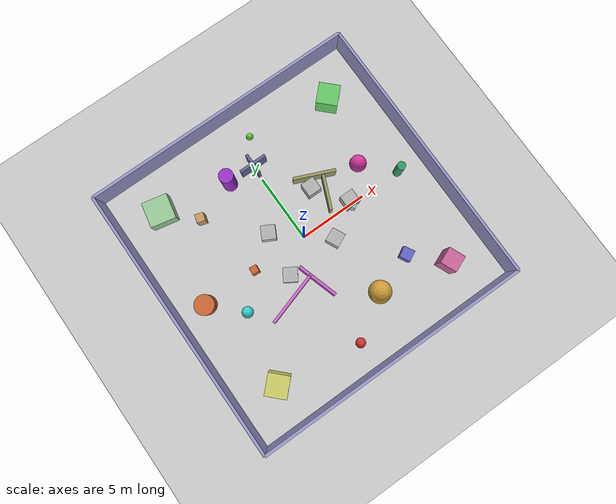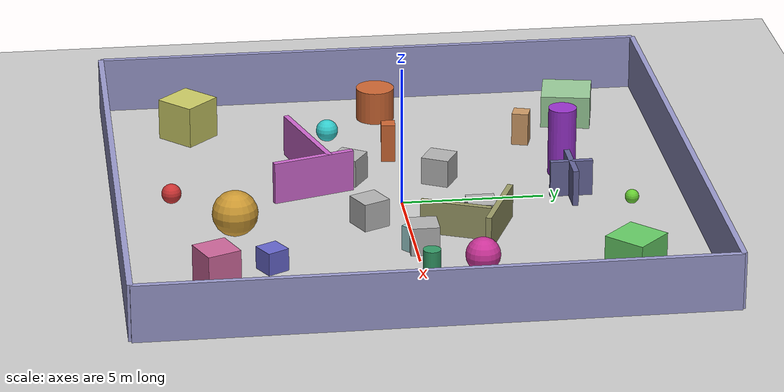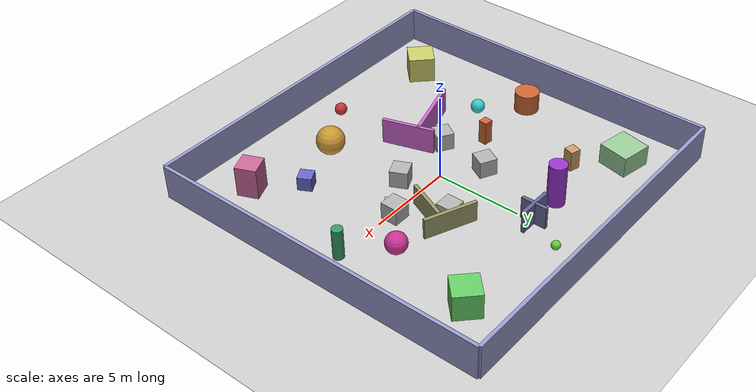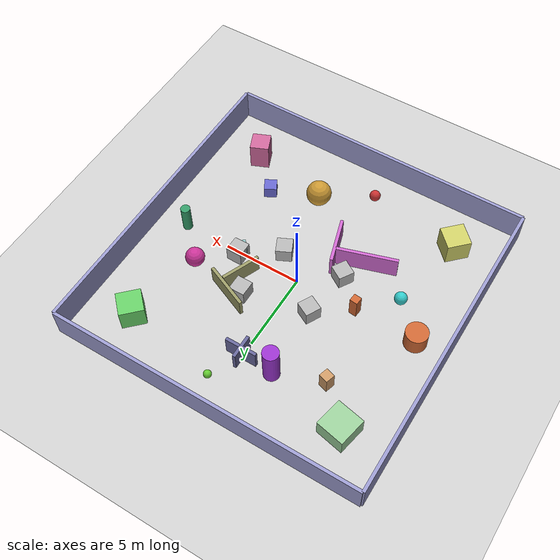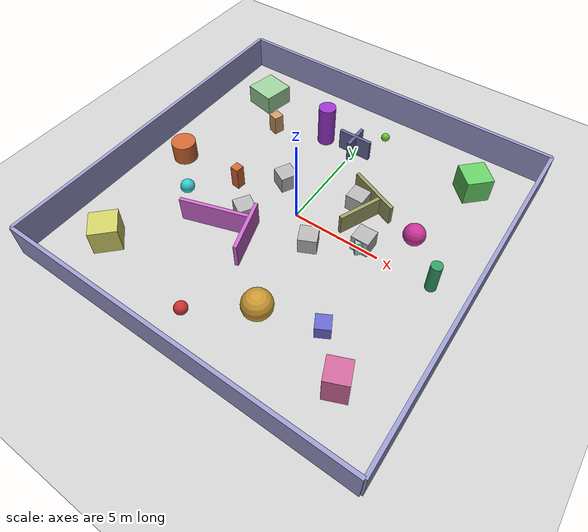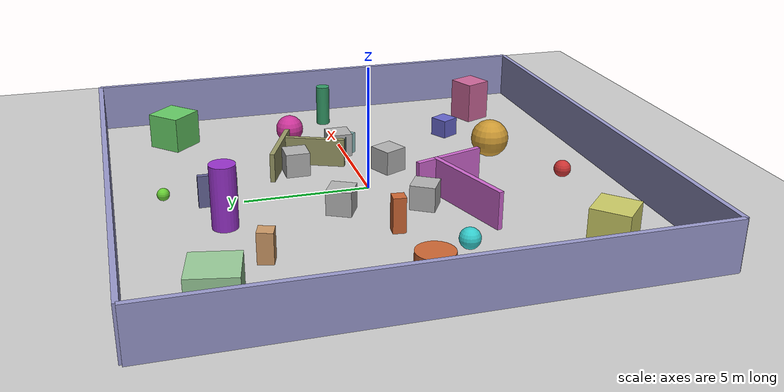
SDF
<sdf version='1.10'>
  <world name='empty'>
    <physics name='1ms' type='ignored'>
      <max_step_size>0.001</max_step_size>
      <real_time_factor>1</real_time_factor>
      <real_time_update_rate>1000</real_time_update_rate>
    </physics>
    <plugin name='gz::sim::systems::Physics' filename='gz-sim-physics-system'/>
    <plugin name='gz::sim::systems::UserCommands' filename='gz-sim-user-commands-system'/>
    <plugin name='gz::sim::systems::SceneBroadcaster' filename='gz-sim-scene-broadcaster-system'/>
    <plugin name='gz::sim::systems::Contact' filename='gz-sim-contact-system'/>
    <plugin name='gz::sim::systems::Imu' filename='gz-sim-imu-system'/>
    <plugin name='gz::sim::systems::Sensors' filename='gz-sim-sensors-system'>
      <render_engine>ogre2</render_engine>
    </plugin>
    <gravity>0 0 -9.8000000000000007</gravity>
    <magnetic_field>5.5644999999999998e-06 2.2875799999999999e-05 -4.2388400000000002e-05</magnetic_field>
    <atmosphere type='adiabatic'/>
    <scene>
      <ambient>0.400000006 0.400000006 0.400000006 1</ambient>
      <background>0.699999988 0.699999988 0.699999988 1</background>
      <shadows>true</shadows>
    </scene>
    <model name='ground_plane'>
      <static>true</static>
      <link name='link'>
        <collision name='collision'>
          <geometry>
            <plane>
              <normal>0 0 1</normal>
              <size>100 100</size>
            </plane>
          </geometry>
          <surface>
            <friction>
              <ode/>
            </friction>
            <bounce/>
            <contact/>
          </surface>
        </collision>
        <visual name='visual'>
          <geometry>
            <plane>
              <normal>0 0 1</normal>
              <size>100 100</size>
            </plane>
          </geometry>
          <material>
            <ambient>0.800000012 0.800000012 0.800000012 1</ambient>
            <diffuse>0.800000012 0.800000012 0.800000012 1</diffuse>
            <specular>0.800000012 0.800000012 0.800000012 1</specular>
          </material>
        </visual>
        <pose>0 0 0 0 0 0</pose>
        <inertial>
          <pose>0 0 0 0 0 0</pose>
          <mass>1</mass>
          <inertia>
            <ixx>1</ixx>
            <ixy>0</ixy>
            <ixz>0</ixz>
            <iyy>1</iyy>
            <iyz>0</iyz>
            <izz>1</izz>
          </inertia>
        </inertial>
        <enable_wind>false</enable_wind>
      </link>
      <pose>0 0 0 0 0 0</pose>
      <self_collide>false</self_collide>
    </model>

    <!-- Perimeter Walls -->
    <!-- North Wall -->
    <model name='north_wall'>
      <static>true</static>
      <link name='link'>
        <collision name='collision'>
          <geometry>
            <box>
              <size>20 0.2 2</size>
            </box>
          </geometry>
          <surface>
            <friction>
              <ode/>
            </friction>
            <bounce/>
            <contact/>
          </surface>
        </collision>
        <visual name='visual'>
          <geometry>
            <box>
              <size>20 0.2 2</size>
            </box>
          </geometry>
          <material>
            <ambient>0.6 0.6 0.8 1</ambient>
            <diffuse>0.6 0.6 0.8 1</diffuse>
            <specular>0.2 0.2 0.2 1</specular>
          </material>
        </visual>
        <pose>0 0 0 0 0 0</pose>
        <inertial>
          <mass>100</mass>
          <inertia>
            <ixx>33.33</ixx>
            <ixy>0</ixy>
            <ixz>0</ixz>
            <iyy>666.67</iyy>
            <iyz>0</iyz>
            <izz>666.67</izz>
          </inertia>
          <pose>0 0 0 0 0 0</pose>
        </inertial>
        <enable_wind>false</enable_wind>
      </link>
      <pose>0 10 1 0 0 0</pose>
      <self_collide>false</self_collide>
    </model>

    <!-- South Wall -->
    <model name='south_wall'>
      <static>true</static>
      <link name='link'>
        <collision name='collision'>
          <geometry>
            <box>
              <size>20 0.2 2</size>
            </box>
          </geometry>
          <surface>
            <friction>
              <ode/>
            </friction>
            <bounce/>
            <contact/>
          </surface>
        </collision>
        <visual name='visual'>
          <geometry>
            <box>
              <size>20 0.2 2</size>
            </box>
          </geometry>
          <material>
            <ambient>0.6 0.6 0.8 1</ambient>
            <diffuse>0.6 0.6 0.8 1</diffuse>
            <specular>0.2 0.2 0.2 1</specular>
          </material>
        </visual>
        <pose>0 0 0 0 0 0</pose>
        <inertial>
          <mass>100</mass>
          <inertia>
            <ixx>33.33</ixx>
            <ixy>0</ixy>
            <ixz>0</ixz>
            <iyy>666.67</iyy>
            <iyz>0</iyz>
            <izz>666.67</izz>
          </inertia>
          <pose>0 0 0 0 0 0</pose>
        </inertial>
        <enable_wind>false</enable_wind>
      </link>
      <pose>0 -10 1 0 0 0</pose>
      <self_collide>false</self_collide>
    </model>

    <!-- East Wall -->
    <model name='east_wall'>
      <static>true</static>
      <link name='link'>
        <collision name='collision'>
          <geometry>
            <box>
              <size>0.2 20 2</size>
            </box>
          </geometry>
          <surface>
            <friction>
              <ode/>
            </friction>
            <bounce/>
            <contact/>
          </surface>
        </collision>
        <visual name='visual'>
          <geometry>
            <box>
              <size>0.2 20 2</size>
            </box>
          </geometry>
          <material>
            <ambient>0.6 0.6 0.8 1</ambient>
            <diffuse>0.6 0.6 0.8 1</diffuse>
            <specular>0.2 0.2 0.2 1</specular>
          </material>
        </visual>
        <pose>0 0 0 0 0 0</pose>
        <inertial>
          <mass>100</mass>
          <inertia>
            <ixx>666.67</ixx>
            <ixy>0</ixy>
            <ixz>0</ixz>
            <iyy>33.33</iyy>
            <iyz>0</iyz>
            <izz>666.67</izz>
          </inertia>
          <pose>0 0 0 0 0 0</pose>
        </inertial>
        <enable_wind>false</enable_wind>
      </link>
      <pose>10 0 1 0 0 0</pose>
      <self_collide>false</self_collide>
    </model>

    <!-- West Wall -->
    <model name='west_wall'>
      <static>true</static>
      <link name='link'>
        <collision name='collision'>
          <geometry>
            <box>
              <size>0.2 20 2</size>
            </box>
          </geometry>
          <surface>
            <friction>
              <ode/>
            </friction>
            <bounce/>
            <contact/>
          </surface>
        </collision>
        <visual name='visual'>
          <geometry>
            <box>
              <size>0.2 20 2</size>
            </box>
          </geometry>
          <material>
            <ambient>0.6 0.6 0.8 1</ambient>
            <diffuse>0.6 0.6 0.8 1</diffuse>
            <specular>0.2 0.2 0.2 1</specular>
          </material>
        </visual>
        <pose>0 0 0 0 0 0</pose>
        <inertial>
          <mass>100</mass>
          <inertia>
            <ixx>666.67</ixx>
            <ixy>0</ixy>
            <ixz>0</ixz>
            <iyy>33.33</iyy>
            <iyz>0</iyz>
            <izz>666.67</izz>
          </inertia>
          <pose>0 0 0 0 0 0</pose>
        </inertial>
        <enable_wind>false</enable_wind>
      </link>
      <pose>-10 0 1 0 0 0</pose>
      <self_collide>false</self_collide>
    </model>

    <!-- Interior Obstacles -->
    <!-- Corner obstacles -->
    <model name='corner_box_1'>
      <static>true</static>
      <link name='link'>
        <collision name='collision'>
          <geometry>
            <box>
              <size>1.5 1.5 1.5</size>
            </box>
          </geometry>
          <surface>
            <friction>
              <ode/>
            </friction>
            <bounce/>
            <contact/>
          </surface>
        </collision>
        <visual name='visual'>
          <geometry>
            <box>
              <size>1.5 1.5 1.5</size>
            </box>
          </geometry>
          <material>
            <ambient>0.4 0.8 0.4 1</ambient>
            <diffuse>0.4 0.8 0.4 1</diffuse>
            <specular>0.2 0.2 0.2 1</specular>
          </material>
        </visual>
        <pose>0 0 0 0 0 0</pose>
        <inertial>
          <mass>20</mass>
          <inertia>
            <ixx>3.75</ixx>
            <ixy>0</ixy>
            <ixz>0</ixz>
            <iyy>3.75</iyy>
            <iyz>0</iyz>
            <izz>3.75</izz>
          </inertia>
          <pose>0 0 0 0 0 0</pose>
        </inertial>
        <enable_wind>false</enable_wind>
      </link>
      <pose>7 7 0.75 0 0 0.785</pose>
      <self_collide>false</self_collide>
    </model>

    <model name='corner_box_2'>
      <static>true</static>
      <link name='link'>
        <collision name='collision'>
          <geometry>
            <box>
              <size>1.5 1.5 1.5</size>
            </box>
          </geometry>
          <surface>
            <friction>
              <ode/>
            </friction>
            <bounce/>
            <contact/>
          </surface>
        </collision>
        <visual name='visual'>
          <geometry>
            <box>
              <size>1.5 1.5 1.5</size>
            </box>
          </geometry>
          <material>
            <ambient>0.8 0.8 0.4 1</ambient>
            <diffuse>0.8 0.8 0.4 1</diffuse>
            <specular>0.2 0.2 0.2 1</specular>
          </material>
        </visual>
        <pose>0 0 0 0 0 0</pose>
        <inertial>
          <mass>20</mass>
          <inertia>
            <ixx>3.75</ixx>
            <ixy>0</ixy>
            <ixz>0</ixz>
            <iyy>3.75</iyy>
            <iyz>0</iyz>
            <izz>3.75</izz>
          </inertia>
          <pose>0 0 0 0 0 0</pose>
        </inertial>
        <enable_wind>false</enable_wind>
      </link>
      <pose>-7 -7 0.75 0 0 -0.785</pose>
      <self_collide>false</self_collide>
    </model>

    <!-- Additional corner obstacles -->
    <model name='corner_box_3'>
      <static>true</static>
      <link name='link'>
        <collision name='collision'>
          <geometry>
            <box>
              <size>1.2 1.2 1.8</size>
            </box>
          </geometry>
          <surface>
            <friction>
              <ode/>
            </friction>
            <bounce/>
            <contact/>
          </surface>
        </collision>
        <visual name='visual'>
          <geometry>
            <box>
              <size>1.2 1.2 1.8</size>
            </box>
          </geometry>
          <material>
            <ambient>0.8 0.4 0.6 1</ambient>
            <diffuse>0.8 0.4 0.6 1</diffuse>
            <specular>0.2 0.2 0.2 1</specular>
          </material>
        </visual>
        <pose>0 0 0 0 0 0</pose>
        <inertial>
          <mass>15</mass>
          <inertia>
            <ixx>2.16</ixx>
            <ixy>0</ixy>
            <ixz>0</ixz>
            <iyy>2.16</iyy>
            <iyz>0</iyz>
            <izz>2.16</izz>
          </inertia>
          <pose>0 0 0 0 0 0</pose>
        </inertial>
        <enable_wind>false</enable_wind>
      </link>
      <pose>7 -7 0.9 0 0 0.4</pose>
      <self_collide>false</self_collide>
    </model>

    <model name='corner_box_4'>
      <static>true</static>
      <link name='link'>
        <collision name='collision'>
          <geometry>
            <box>
              <size>1.8 1.8 1.2</size>
            </box>
          </geometry>
          <surface>
            <friction>
              <ode/>
            </friction>
            <bounce/>
            <contact/>
          </surface>
        </collision>
        <visual name='visual'>
          <geometry>
            <box>
              <size>1.8 1.8 1.2</size>
            </box>
          </geometry>
          <material>
            <ambient>0.6 0.8 0.6 1</ambient>
            <diffuse>0.6 0.8 0.6 1</diffuse>
            <specular>0.2 0.2 0.2 1</specular>
          </material>
        </visual>
        <pose>0 0 0 0 0 0</pose>
        <inertial>
          <mass>25</mass>
          <inertia>
            <ixx>5.4</ixx>
            <ixy>0</ixy>
            <ixz>0</ixz>
            <iyy>5.4</iyy>
            <iyz>0</iyz>
            <izz>5.4</izz>
          </inertia>
          <pose>0 0 0 0 0 0</pose>
        </inertial>
        <enable_wind>false</enable_wind>
      </link>
      <pose>-7 7 0.6 0 0 -0.2</pose>
      <self_collide>false</self_collide>
    </model>

    <!-- L-shaped walls -->
    <model name='l_wall_1'>
      <static>true</static>
      <link name='link'>
        <collision name='collision'>
          <geometry>
            <box>
              <size>4 0.2 1.5</size>
            </box>
          </geometry>
          <surface>
            <friction>
              <ode/>
            </friction>
            <bounce/>
            <contact/>
          </surface>
        </collision>
        <visual name='visual'>
          <geometry>
            <box>
              <size>4 0.2 1.5</size>
            </box>
          </geometry>
          <material>
            <ambient>0.8 0.4 0.8 1</ambient>
            <diffuse>0.8 0.4 0.8 1</diffuse>
            <specular>0.2 0.2 0.2 1</specular>
          </material>
        </visual>
        <pose>0 0 0 0 0 0</pose>
        <inertial>
          <mass>30</mass>
          <inertia>
            <ixx>5.625</ixx>
            <ixy>0</ixy>
            <ixz>0</ixz>
            <iyy>200</iyy>
            <iyz>0</iyz>
            <izz>200</izz>
          </inertia>
          <pose>0 0 0 0 0 0</pose>
        </inertial>
        <enable_wind>false</enable_wind>
      </link>
      <pose>-3 -3 0.75 0 0 0.3</pose>
      <self_collide>false</self_collide>
    </model>

    <model name='l_wall_2'>
      <static>true</static>
      <link name='link'>
        <collision name='collision'>
          <geometry>
            <box>
              <size>0.2 3 1.5</size>
            </box>
          </geometry>
          <surface>
            <friction>
              <ode/>
            </friction>
            <bounce/>
            <contact/>
          </surface>
        </collision>
        <visual name='visual'>
          <geometry>
            <box>
              <size>0.2 3 1.5</size>
            </box>
          </geometry>
          <material>
            <ambient>0.8 0.4 0.8 1</ambient>
            <diffuse>0.8 0.4 0.8 1</diffuse>
            <specular>0.2 0.2 0.2 1</specular>
          </material>
        </visual>
        <pose>0 0 0 0 0 0</pose>
        <inertial>
          <mass>30</mass>
          <inertia>
            <ixx>200</ixx>
            <ixy>0</ixy>
            <ixz>0</ixz>
            <iyy>5.625</iyy>
            <iyz>0</iyz>
            <izz>200</izz>
          </inertia>
          <pose>0 0 0 0 0 0</pose>
        </inertial>
        <enable_wind>false</enable_wind>
      </link>
      <pose>-1 -3 0.75 0 0 0.3</pose>
      <self_collide>false</self_collide>
    </model>

    <!-- Additional L-shaped wall structures -->
    <model name='l_wall_3'>
      <static>true</static>
      <link name='link'>
        <collision name='collision'>
          <geometry>
            <box>
              <size>3 0.2 1.2</size>
            </box>
          </geometry>
          <surface>
            <friction>
              <ode/>
            </friction>
            <bounce/>
            <contact/>
          </surface>
        </collision>
        <visual name='visual'>
          <geometry>
            <box>
              <size>3 0.2 1.2</size>
            </box>
          </geometry>
          <material>
            <ambient>0.6 0.6 0.4 1</ambient>
            <diffuse>0.6 0.6 0.4 1</diffuse>
            <specular>0.2 0.2 0.2 1</specular>
          </material>
        </visual>
        <pose>0 0 0 0 0 0</pose>
        <inertial>
          <mass>20</mass>
          <inertia>
            <ixx>3.6</ixx>
            <ixy>0</ixy>
            <ixz>0</ixz>
            <iyy>150</iyy>
            <iyz>0</iyz>
            <izz>150</izz>
          </inertia>
          <pose>0 0 0 0 0 0</pose>
        </inertial>
        <enable_wind>false</enable_wind>
      </link>
      <pose>3 3 0.6 0 0 -0.4</pose>
      <self_collide>false</self_collide>
    </model>

    <model name='l_wall_4'>
      <static>true</static>
      <link name='link'>
        <collision name='collision'>
          <geometry>
            <box>
              <size>0.2 2.5 1.2</size>
            </box>
          </geometry>
          <surface>
            <friction>
              <ode/>
            </friction>
            <bounce/>
            <contact/>
          </surface>
        </collision>
        <visual name='visual'>
          <geometry>
            <box>
              <size>0.2 2.5 1.2</size>
            </box>
          </geometry>
          <material>
            <ambient>0.6 0.6 0.4 1</ambient>
            <diffuse>0.6 0.6 0.4 1</diffuse>
            <specular>0.2 0.2 0.2 1</specular>
          </material>
        </visual>
        <pose>0 0 0 0 0 0</pose>
        <inertial>
          <mass>20</mass>
          <inertia>
            <ixx>150</ixx>
            <ixy>0</ixy>
            <ixz>0</ixz>
            <iyy>4.6875</iyy>
            <iyz>0</iyz>
            <izz>150</izz>
          </inertia>
          <pose>0 0 0 0 0 0</pose>
        </inertial>
        <enable_wind>false</enable_wind>
      </link>
      <pose>3 1.5 0.6 0 0 -0.4</pose>
      <self_collide>false</self_collide>
    </model>

    <!-- T-shaped wall structure -->
    <model name='t_wall_1'>
      <static>true</static>
      <link name='link'>
        <collision name='collision'>
          <geometry>
            <box>
              <size>2 0.2 1.3</size>
            </box>
          </geometry>
          <surface>
            <friction>
              <ode/>
            </friction>
            <bounce/>
            <contact/>
          </surface>
        </collision>
        <visual name='visual'>
          <geometry>
            <box>
              <size>2 0.2 1.3</size>
            </box>
          </geometry>
          <material>
            <ambient>0.4 0.4 0.6 1</ambient>
            <diffuse>0.4 0.4 0.6 1</diffuse>
            <specular>0.2 0.2 0.2 1</specular>
          </material>
        </visual>
        <pose>0 0 0 0 0 0</pose>
        <inertial>
          <mass>15</mass>
          <inertia>
            <ixx>2.5</ixx>
            <ixy>0</ixy>
            <ixz>0</ixz>
            <iyy>100</iyy>
            <iyz>0</iyz>
            <izz>100</izz>
          </inertia>
          <pose>0 0 0 0 0 0</pose>
        </inertial>
        <enable_wind>false</enable_wind>
      </link>
      <pose>0 6 0.65 0 0 0</pose>
      <self_collide>false</self_collide>
    </model>

    <model name='t_wall_2'>
      <static>true</static>
      <link name='link'>
        <collision name='collision'>
          <geometry>
            <box>
              <size>0.2 1.5 1.3</size>
            </box>
          </geometry>
          <surface>
            <friction>
              <ode/>
            </friction>
            <bounce/>
            <contact/>
          </surface>
        </collision>
        <visual name='visual'>
          <geometry>
            <box>
              <size>0.2 1.5 1.3</size>
            </box>
          </geometry>
          <material>
            <ambient>0.4 0.4 0.6 1</ambient>
            <diffuse>0.4 0.4 0.6 1</diffuse>
            <specular>0.2 0.2 0.2 1</specular>
          </material>
        </visual>
        <pose>0 0 0 0 0 0</pose>
        <inertial>
          <mass>15</mass>
          <inertia>
            <ixx>100</ixx>
            <ixy>0</ixy>
            <ixz>0</ixz>
            <iyy>2.8125</iyy>
            <iyz>0</iyz>
            <izz>100</izz>
          </inertia>
          <pose>0 0 0 0 0 0</pose>
        </inertial>
        <enable_wind>false</enable_wind>
      </link>
      <pose>0 6 0.65 0 0 0</pose>
      <self_collide>false</self_collide>
    </model>

    <!-- Random small obstacles -->
    <model name='small_obstacle_1'>
      <static>true</static>
      <link name='link'>
        <collision name='collision'>
          <geometry>
            <box>
              <size>0.8 0.8 0.8</size>
            </box>
          </geometry>
          <surface>
            <friction>
              <ode/>
            </friction>
            <bounce/>
            <contact/>
          </surface>
        </collision>
        <visual name='visual'>
          <geometry>
            <box>
              <size>0.8 0.8 0.8</size>
            </box>
          </geometry>
          <material>
            <ambient>0.4 0.4 0.8 1</ambient>
            <diffuse>0.4 0.4 0.8 1</diffuse>
            <specular>0.2 0.2 0.2 1</specular>
          </material>
        </visual>
        <pose>0 0 0 0 0 0</pose>
        <inertial>
          <mass>10</mass>
          <inertia>
            <ixx>1.07</ixx>
            <ixy>0</ixy>
            <ixz>0</ixz>
            <iyy>1.07</iyy>
            <iyz>0</iyz>
            <izz>1.07</izz>
          </inertia>
          <pose>0 0 0 0 0 0</pose>
        </inertial>
        <enable_wind>false</enable_wind>
      </link>
      <pose>5 -5 0.4 0 0 0.5</pose>
      <self_collide>false</self_collide>
    </model>

    <model name='small_obstacle_2'>
      <static>true</static>
      <link name='link'>
        <collision name='collision'>
          <geometry>
            <box>
              <size>0.6 0.6 1.2</size>
            </box>
          </geometry>
          <surface>
            <friction>
              <ode/>
            </friction>
            <bounce/>
            <contact/>
          </surface>
        </collision>
        <visual name='visual'>
          <geometry>
            <box>
              <size>0.6 0.6 1.2</size>
            </box>
          </geometry>
          <material>
            <ambient>0.8 0.6 0.4 1</ambient>
            <diffuse>0.8 0.6 0.4 1</diffuse>
            <specular>0.2 0.2 0.2 1</specular>
          </material>
        </visual>
        <pose>0 0 0 0 0 0</pose>
        <inertial>
          <mass>8</mass>
          <inertia>
            <ixx>0.72</ixx>
            <ixy>0</ixy>
            <ixz>0</ixz>
            <iyy>0.72</iyy>
            <iyz>0</iyz>
            <izz>0.72</izz>
          </inertia>
          <pose>0 0 0 0 0 0</pose>
        </inertial>
        <enable_wind>false</enable_wind>
      </link>
      <pose>-5 5 0.6 0 0 -0.3</pose>
      <self_collide>false</self_collide>
    </model>

    <!-- Additional small obstacles -->
    <model name='small_obstacle_3'>
      <static>true</static>
      <link name='link'>
        <collision name='collision'>
          <geometry>
            <box>
              <size>0.7 0.7 0.9</size>
            </box>
          </geometry>
          <surface>
            <friction>
              <ode/>
            </friction>
            <bounce/>
            <contact/>
          </surface>
        </collision>
        <visual name='visual'>
          <geometry>
            <box>
              <size>0.7 0.7 0.9</size>
            </box>
          </geometry>
          <material>
            <ambient>0.6 0.8 0.8 1</ambient>
            <diffuse>0.6 0.8 0.8 1</diffuse>
            <specular>0.2 0.2 0.2 1</specular>
          </material>
        </visual>
        <pose>0 0 0 0 0 0</pose>
        <inertial>
          <mass>7</mass>
          <inertia>
            <ixx>0.735</ixx>
            <ixy>0</ixy>
            <ixz>0</ixz>
            <iyy>0.735</iyy>
            <iyz>0</iyz>
            <izz>0.735</izz>
          </inertia>
          <pose>0 0 0 0 0 0</pose>
        </inertial>
        <enable_wind>false</enable_wind>
      </link>
      <pose>4 0 0.45 0 0 0.7</pose>
      <self_collide>false</self_collide>
    </model>

    <model name='small_obstacle_4'>
      <static>true</static>
      <link name='link'>
        <collision name='collision'>
          <geometry>
            <box>
              <size>0.5 0.5 1.4</size>
            </box>
          </geometry>
          <surface>
            <friction>
              <ode/>
            </friction>
            <bounce/>
            <contact/>
          </surface>
        </collision>
        <visual name='visual'>
          <geometry>
            <box>
              <size>0.5 0.5 1.4</size>
            </box>
          </geometry>
          <material>
            <ambient>0.8 0.4 0.2 1</ambient>
            <diffuse>0.8 0.4 0.2 1</diffuse>
            <specular>0.2 0.2 0.2 1</specular>
          </material>
        </visual>
        <pose>0 0 0 0 0 0</pose>
        <inertial>
          <mass>6</mass>
          <inertia>
            <ixx>0.5</ixx>
            <ixy>0</ixy>
            <ixz>0</ixz>
            <iyy>0.5</iyy>
            <iyz>0</iyz>
            <izz>0.5</izz>
          </inertia>
          <pose>0 0 0 0 0 0</pose>
        </inertial>
        <enable_wind>false</enable_wind>
      </link>
      <pose>-4 0 0.7 0 0 -0.1</pose>
      <self_collide>false</self_collide>
    </model>

    <!-- Spherical objects -->
    <model name='sphere_1'>
      <static>true</static>
      <link name='link'>
        <collision name='collision'>
          <geometry>
            <sphere>
              <radius>0.6</radius>
            </sphere>
          </geometry>
          <surface>
            <friction>
              <ode/>
            </friction>
            <bounce/>
            <contact/>
          </surface>
        </collision>
        <visual name='visual'>
          <geometry>
            <sphere>
              <radius>0.6</radius>
            </sphere>
          </geometry>
          <material>
            <ambient>0.8 0.2 0.6 1</ambient>
            <diffuse>0.8 0.2 0.6 1</diffuse>
            <specular>0.3 0.3 0.3 1</specular>
          </material>
        </visual>
        <pose>0 0 0 0 0 0</pose>
        <inertial>
          <mass>12</mass>
          <inertia>
            <ixx>1.728</ixx>
            <ixy>0</ixy>
            <ixz>0</ixz>
            <iyy>1.728</iyy>
            <iyz>0</iyz>
            <izz>1.728</izz>
          </inertia>
          <pose>0 0 0 0 0 0</pose>
        </inertial>
        <enable_wind>false</enable_wind>
      </link>
      <pose>6 2 0.6 0 0 0</pose>
      <self_collide>false</self_collide>
    </model>

    <model name='sphere_2'>
      <static>true</static>
      <link name='link'>
        <collision name='collision'>
          <geometry>
            <sphere>
              <radius>0.4</radius>
            </sphere>
          </geometry>
          <surface>
            <friction>
              <ode/>
            </friction>
            <bounce/>
            <contact/>
          </surface>
        </collision>
        <visual name='visual'>
          <geometry>
            <sphere>
              <radius>0.4</radius>
            </sphere>
          </geometry>
          <material>
            <ambient>0.2 0.8 0.8 1</ambient>
            <diffuse>0.2 0.8 0.8 1</diffuse>
            <specular>0.3 0.3 0.3 1</specular>
          </material>
        </visual>
        <pose>0 0 0 0 0 0</pose>
        <inertial>
          <mass>6</mass>
          <inertia>
            <ixx>0.768</ixx>
            <ixy>0</ixy>
            <ixz>0</ixz>
            <iyy>0.768</iyy>
            <iyz>0</iyz>
            <izz>0.768</izz>
          </inertia>
          <pose>0 0 0 0 0 0</pose>
        </inertial>
        <enable_wind>false</enable_wind>
      </link>
      <pose>-6 -2 0.4 0 0 0</pose>
      <self_collide>false</self_collide>
    </model>

    <model name='sphere_3'>
      <static>true</static>
      <link name='link'>
        <collision name='collision'>
          <geometry>
            <sphere>
              <radius>0.8</radius>
            </sphere>
          </geometry>
          <surface>
            <friction>
              <ode/>
            </friction>
            <bounce/>
            <contact/>
          </surface>
        </collision>
        <visual name='visual'>
          <geometry>
            <sphere>
              <radius>0.8</radius>
            </sphere>
          </geometry>
          <material>
            <ambient>0.8 0.6 0.2 1</ambient>
            <diffuse>0.8 0.6 0.2 1</diffuse>
            <specular>0.3 0.3 0.3 1</specular>
          </material>
        </visual>
        <pose>0 0 0 0 0 0</pose>
        <inertial>
          <mass>20</mass>
          <inertia>
            <ixx>5.12</ixx>
            <ixy>0</ixy>
            <ixz>0</ixz>
            <iyy>5.12</iyy>
            <iyz>0</iyz>
            <izz>5.12</izz>
          </inertia>
          <pose>0 0 0 0 0 0</pose>
        </inertial>
        <enable_wind>false</enable_wind>
      </link>
      <pose>2 -6 0.8 0 0 0</pose>
      <self_collide>false</self_collide>
    </model>

    <!-- Cylindrical objects -->
    <model name='cylinder_1'>
      <static>true</static>
      <link name='link'>
        <collision name='collision'>
          <geometry>
            <cylinder>
              <radius>0.5</radius>
              <length>2.5</length>
            </cylinder>
          </geometry>
          <surface>
            <friction>
              <ode/>
            </friction>
            <bounce/>
            <contact/>
          </surface>
        </collision>
        <visual name='visual'>
          <geometry>
            <cylinder>
              <radius>0.5</radius>
              <length>2.5</length>
            </cylinder>
          </geometry>
          <material>
            <ambient>0.6 0.2 0.8 1</ambient>
            <diffuse>0.6 0.2 0.8 1</diffuse>
            <specular>0.3 0.3 0.3 1</specular>
          </material>
        </visual>
        <pose>0 0 0 0 0 0</pose>
        <inertial>
          <mass>25</mass>
          <inertia>
            <ixx>7.8125</ixx>
            <ixy>0</ixy>
            <ixz>0</ixz>
            <iyy>7.8125</iyy>
            <iyz>0</iyz>
            <izz>6.25</izz>
          </inertia>
          <pose>0 0 0 0 0 0</pose>
        </inertial>
        <enable_wind>false</enable_wind>
      </link>
      <pose>-2 6 1.25 0 0 0.8</pose>
      <self_collide>false</self_collide>
    </model>

    <model name='cylinder_2'>
      <static>true</static>
      <link name='link'>
        <collision name='collision'>
          <geometry>
            <cylinder>
              <radius>0.3</radius>
              <length>1.8</length>
            </cylinder>
          </geometry>
          <surface>
            <friction>
              <ode/>
            </friction>
            <bounce/>
            <contact/>
          </surface>
        </collision>
        <visual name='visual'>
          <geometry>
            <cylinder>
              <radius>0.3</radius>
              <length>1.8</length>
            </cylinder>
          </geometry>
          <material>
            <ambient>0.2 0.6 0.4 1</ambient>
            <diffuse>0.2 0.6 0.4 1</diffuse>
            <specular>0.3 0.3 0.3 1</specular>
          </material>
        </visual>
        <pose>0 0 0 0 0 0</pose>
        <inertial>
          <mass>12</mass>
          <inertia>
            <ixx>2.8125</ixx>
            <ixy>0</ixy>
            <ixz>0</ixz>
            <iyy>2.8125</iyy>
            <iyz>0</iyz>
            <izz>2.25</izz>
          </inertia>
          <pose>0 0 0 0 0 0</pose>
        </inertial>
        <enable_wind>false</enable_wind>
      </link>
      <pose>8 0 0.9 0 0 -0.5</pose>
      <self_collide>false</self_collide>
    </model>

    <model name='cylinder_3'>
      <static>true</static>
      <link name='link'>
        <collision name='collision'>
          <geometry>
            <cylinder>
              <radius>0.7</radius>
              <length>1.2</length>
            </cylinder>
          </geometry>
          <surface>
            <friction>
              <ode/>
            </friction>
            <bounce/>
            <contact/>
          </surface>
        </collision>
        <visual name='visual'>
          <geometry>
            <cylinder>
              <radius>0.7</radius>
              <length>1.2</length>
            </cylinder>
          </geometry>
          <material>
            <ambient>0.8 0.4 0.2 1</ambient>
            <diffuse>0.8 0.4 0.2 1</diffuse>
            <specular>0.3 0.3 0.3 1</specular>
          </material>
        </visual>
        <pose>0 0 0 0 0 0</pose>
        <inertial>
          <mass>18</mass>
          <inertia>
            <ixx>8.82</ixx>
            <ixy>0</ixy>
            <ixz>0</ixz>
            <iyy>8.82</iyy>
            <iyz>0</iyz>
            <izz>7.056</izz>
          </inertia>
          <pose>0 0 0 0 0 0</pose>
        </inertial>
        <enable_wind>false</enable_wind>
      </link>
      <pose>-8 0 0.6 0 0 1.2</pose>
      <self_collide>false</self_collide>
    </model>

    <!-- Additional small spheres -->
    <model name='small_sphere_1'>
      <static>true</static>
      <link name='link'>
        <collision name='collision'>
          <geometry>
            <sphere>
              <radius>0.25</radius>
            </sphere>
          </geometry>
          <surface>
            <friction>
              <ode/>
            </friction>
            <bounce/>
            <contact/>
          </surface>
        </collision>
        <visual name='visual'>
          <geometry>
            <sphere>
              <radius>0.25</radius>
            </sphere>
          </geometry>
          <material>
            <ambient>0.4 0.8 0.2 1</ambient>
            <diffuse>0.4 0.8 0.2 1</diffuse>
            <specular>0.3 0.3 0.3 1</specular>
          </material>
        </visual>
        <pose>0 0 0 0 0 0</pose>
        <inertial>
          <mass>3</mass>
          <inertia>
            <ixx>0.1875</ixx>
            <ixy>0</ixy>
            <ixz>0</ixz>
            <iyy>0.1875</iyy>
            <iyz>0</iyz>
            <izz>0.1875</izz>
          </inertia>
          <pose>0 0 0 0 0 0</pose>
        </inertial>
        <enable_wind>false</enable_wind>
      </link>
      <pose>1 8 0.25 0 0 0</pose>
      <self_collide>false</self_collide>
    </model>

    <model name='small_sphere_2'>
      <static>true</static>
      <link name='link'>
        <collision name='collision'>
          <geometry>
            <sphere>
              <radius>0.35</radius>
            </sphere>
          </geometry>
          <surface>
            <friction>
              <ode/>
            </friction>
            <bounce/>
            <contact/>
          </surface>
        </collision>
        <visual name='visual'>
          <geometry>
            <sphere>
              <radius>0.35</radius>
            </sphere>
          </geometry>
          <material>
            <ambient>0.8 0.2 0.2 1</ambient>
            <diffuse>0.8 0.2 0.2 1</diffuse>
            <specular>0.3 0.3 0.3 1</specular>
          </material>
        </visual>
        <pose>0 0 0 0 0 0</pose>
        <inertial>
          <mass>5</mass>
          <inertia>
            <ixx>0.514</ixx>
            <ixy>0</ixy>
            <ixz>0</ixz>
            <iyy>0.514</iyy>
            <iyz>0</iyz>
            <izz>0.514</izz>
          </inertia>
          <pose>0 0 0 0 0 0</pose>
        </inertial>
        <enable_wind>false</enable_wind>
      </link>
      <pose>-1 -8 0.35 0 0 0</pose>
      <self_collide>false</self_collide>
    </model>

    <!-- Original boxes (kept for compatibility) -->
    <model name='box'>
      <pose>2.3574834545041288 2.4643647237051445 0.49999999970892495 1.9456243348768095e-21 -2.0287702973480091e-21 -7.5527752180039009e-22</pose>
      <link name='box_link'>
        <inertial>
          <inertia>
            <ixx>0.16666</ixx>
            <ixy>0</ixy>
            <ixz>0</ixz>
            <iyy>0.16666</iyy>
            <iyz>0</iyz>
            <izz>0.16666</izz>
          </inertia>
          <mass>1</mass>
          <pose>0 0 0 0 0 0</pose>
        </inertial>
        <collision name='box_collision'>
          <geometry>
            <box>
              <size>1 1 1</size>
            </box>
          </geometry>
          <surface>
            <friction>
              <ode/>
            </friction>
            <bounce/>
            <contact/>
          </surface>
        </collision>
        <visual name='box_visual'>
          <geometry>
            <box>
              <size>1 1 1</size>
            </box>
          </geometry>
          <material>
            <ambient>0.300000012 0.300000012 0.300000012 1</ambient>
            <diffuse>0.699999988 0.699999988 0.699999988 1</diffuse>
            <specular>1 1 1 1</specular>
          </material>
        </visual>
        <pose>0 0 0 0 0 0</pose>
        <enable_wind>false</enable_wind>
      </link>
      <static>false</static>
      <self_collide>false</self_collide>
    </model>
    <model name='box_0'>
      <pose>-1.8122800588607788 1.5695199966430664 0.49999999980497606 -5.6633659058826257e-21 3.3698233843043827e-21 -0.48152974435677465</pose>
      <link name='box_link'>
        <inertial>
          <inertia>
            <ixx>0.16666</ixx>
            <ixy>0</ixy>
            <ixz>0</ixz>
            <iyy>0.16666</iyy>
            <iyz>0</iyz>
            <izz>0.16666</izz>
          </inertia>
          <mass>1</mass>
          <pose>0 0 0 0 0 0</pose>
        </inertial>
        <collision name='box_collision'>
          <geometry>
            <box>
              <size>1 1 1</size>
            </box>
          </geometry>
          <surface>
            <friction>
              <ode/>
            </friction>
            <bounce/>
            <contact/>
          </surface>
        </collision>
        <visual name='box_visual'>
          <geometry>
            <box>
              <size>1 1 1</size>
            </box>
          </geometry>
          <material>
            <ambient>0.300000012 0.300000012 0.300000012 1</ambient>
            <diffuse>0.699999988 0.699999988 0.699999988 1</diffuse>
            <specular>1 1 1 1</specular>
          </material>
        </visual>
        <pose>0 0 0 0 0 0</pose>
        <enable_wind>false</enable_wind>
      </link>
      <static>false</static>
      <self_collide>false</self_collide>
    </model>
    <model name='box_1'>
      <pose>1.6794099807739258 -1.3264700174331665 0.49999999980497606 -1.7390904041644465e-21 -1.469391796021745e-21 0.44651430974431489</pose>
      <link name='box_link'>
        <inertial>
          <inertia>
            <ixx>0.16666</ixx>
            <ixy>0</ixy>
            <ixz>0</ixz>
            <iyy>0.16666</iyy>
            <iyz>0</iyz>
            <izz>0.16666</izz>
          </inertia>
          <mass>1</mass>
          <pose>0 0 0 0 0 0</pose>
        </inertial>
        <collision name='box_collision'>
          <geometry>
            <box>
              <size>1 1 1</size>
            </box>
          </geometry>
          <surface>
            <friction>
              <ode/>
            </friction>
            <bounce/>
            <contact/>
          </surface>
        </collision>
        <visual name='box_visual'>
          <geometry>
            <box>
              <size>1 1 1</size>
            </box>
          </geometry>
          <material>
            <ambient>0.300000012 0.300000012 0.300000012 1</ambient>
            <diffuse>0.699999988 0.699999988 0.699999988 1</diffuse>
            <specular>1 1 1 1</specular>
          </material>
        </visual>
        <pose>0 0 0 0 0 0</pose>
        <enable_wind>false</enable_wind>
      </link>
      <static>false</static>
      <self_collide>false</self_collide>
    </model>
    <model name='box_2'>
      <pose>-2.2334198951721191 -1.6194700002670288 0.49999999980497606 -2.0865999152418755e-21 2.8052020264444084e-21 -0.55327972589685104</pose>
      <link name='box_link'>
        <inertial>
          <inertia>
            <ixx>0.16666</ixx>
            <ixy>0</ixy>
            <ixz>0</ixz>
            <iyy>0.16666</iyy>
            <iyz>0</iyz>
            <izz>0.16666</izz>
          </inertia>
          <mass>1</mass>
          <pose>0 0 0 0 0 0</pose>
        </inertial>
        <collision name='box_collision'>
          <geometry>
            <box>
              <size>1 1 1</size>
            </box>
          </geometry>
          <surface>
            <friction>
              <ode/>
            </friction>
            <bounce/>
            <contact/>
          </surface>
        </collision>
        <visual name='box_visual'>
          <geometry>
            <box>
              <size>1 1 1</size>
            </box>
          </geometry>
          <material>
            <ambient>0.300000012 0.300000012 0.300000012 1</ambient>
            <diffuse>0.699999988 0.699999988 0.699999988 1</diffuse>
            <specular>1 1 1 1</specular>
          </material>
        </visual>
        <pose>0 0 0 0 0 0</pose>
        <enable_wind>false</enable_wind>
      </link>
      <static>false</static>
      <self_collide>false</self_collide>
    </model>
    <model name='box_3'>
      <pose>4.0295827601540193 0.24537202246089418 0.49999999980497606 1.0048033485058014e-21 -2.4640853465547739e-21 -3.9210766489770922e-22</pose>
      <link name='box_link'>
        <inertial>
          <inertia>
            <ixx>0.16666</ixx>
            <ixy>0</ixy>
            <ixz>0</ixz>
            <iyy>0.16666</iyy>
            <iyz>0</iyz>
            <izz>0.16666</izz>
          </inertia>
          <mass>1</mass>
          <pose>0 0 0 0 0 0</pose>
        </inertial>
        <collision name='box_collision'>
          <geometry>
            <box>
              <size>1 1 1</size>
            </box>
          </geometry>
          <surface>
            <friction>
              <ode/>
            </friction>
            <bounce/>
            <contact/>
          </surface>
        </collision>
        <visual name='box_visual'>
          <geometry>
            <box>
              <size>1 1 1</size>
            </box>
          </geometry>
          <material>
            <ambient>0.300000012 0.300000012 0.300000012 1</ambient>
            <diffuse>0.699999988 0.699999988 0.699999988 1</diffuse>
            <specular>1 1 1 1</specular>
          </material>
        </visual>
        <pose>0 0 0 0 0 0</pose>
        <enable_wind>false</enable_wind>
      </link>
      <static>false</static>
      <self_collide>false</self_collide>
    </model>

    <light name='sun' type='directional'>
      <pose>0 0 10 0 0 0</pose>
      <cast_shadows>true</cast_shadows>
      <intensity>1</intensity>
      <direction>-0.5 0.10000000000000001 -0.90000000000000002</direction>
      <diffuse>0.800000012 0.800000012 0.800000012 1</diffuse>
      <specular>0.200000003 0.200000003 0.200000003 1</specular>
      <attenuation>
        <range>1000</range>
        <linear>0.01</linear>
        <constant>0.90000000000000002</constant>
        <quadratic>0.001</quadratic>
      </attenuation>
      <spot>
        <inner_angle>0</inner_angle>
        <outer_angle>0</outer_angle>
        <falloff>0</falloff>
      </spot>
    </light>
  </world>
</sdf>
